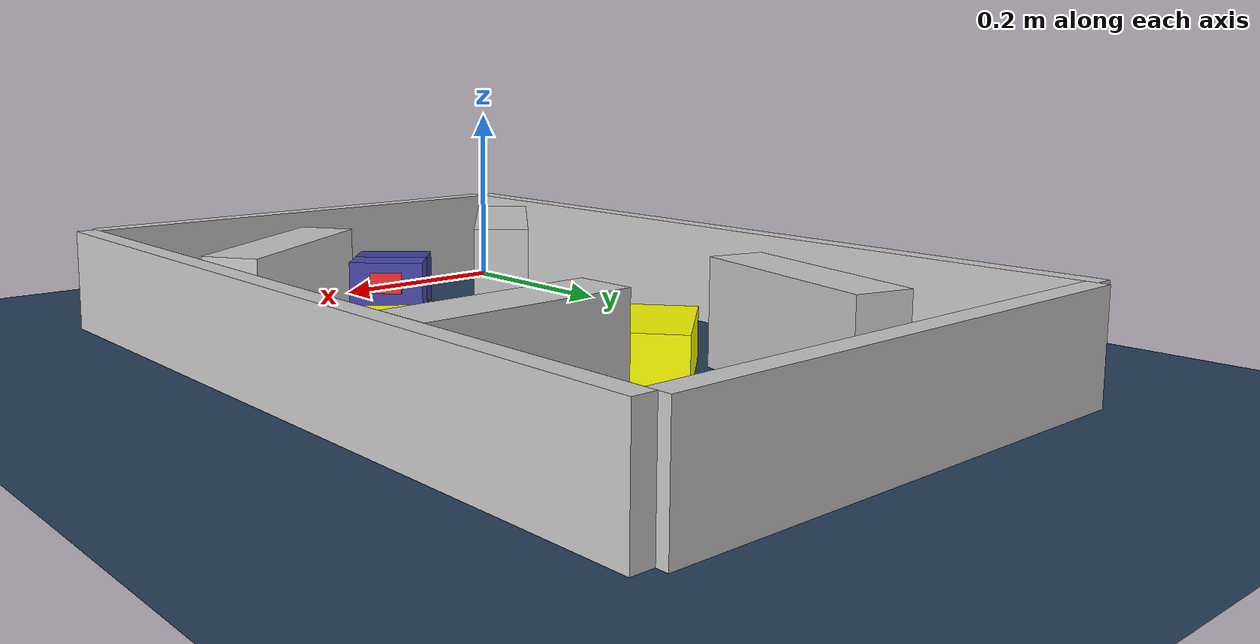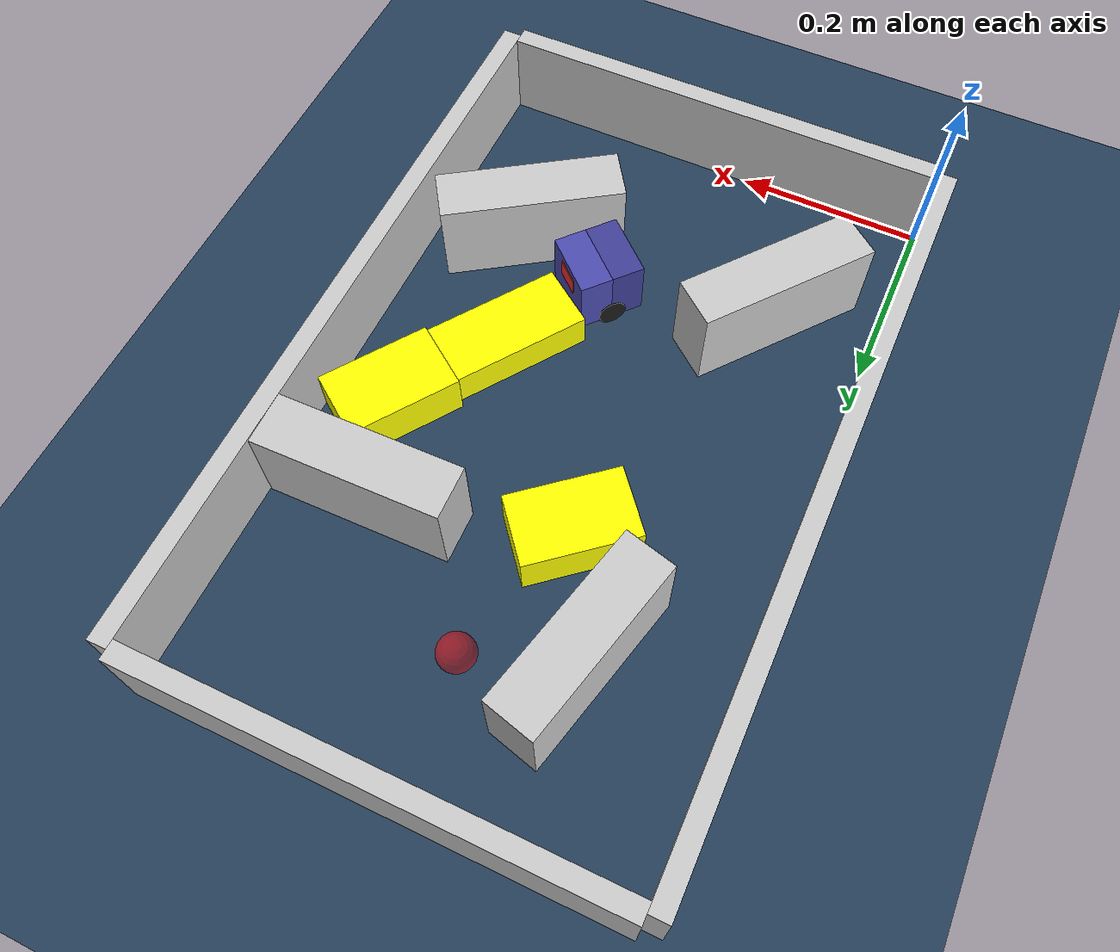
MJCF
<?xml version='1.0' encoding='utf-8'?>
<mujoco model="real_buildable">
  <compiler angle="degree" />
  <option timestep="0.002" integrator="implicitfast" iterations="100" cone="elliptic" />
  <default>
    <geom density="1" />
  </default>
  <asset>
    <texture builtin="gradient" height="3072" rgb1="0.3 0.5 0.7" rgb2="0 0 0" type="skybox" width="512" />
    <texture builtin="checker" height="300" mark="edge" markrgb="0.8 0.8 0.8" name="groundplane" rgb1="0.2 0.3 0.4" rgb2="0.1 0.2 0.3" type="2d" width="300" />
    <material name="groundplane" reflectance="0.2" texrepeat="5 5" texture="groundplane" texuniform="true" />
  </asset>
  <worldbody>
    <light dir="0 0 -1" directional="true" pos="0 0 1.5" />
    <geom name="floor" type="plane" condim="4" friction="0.5 0.005 0.001" material="groundplane" size="0 0 0.05" />
    <body name="walls">
      <geom name="wall_boundary_left" type="box" condim="4" friction="1.0 0.005 0.0001" rgba="0.8 0.8 0.8 1" pos="-0.010000 0.387500 0.050000" euler="0 0 0.000000" size="0.010000 0.397500 0.050000" />
      <geom name="wall_boundary_right" type="box" condim="4" friction="1.0 0.005 0.0001" rgba="0.8 0.8 0.8 1" pos="0.500000 0.387500 0.050000" euler="0 0 0.000000" size="0.010000 0.397500 0.050000" />
      <geom name="wall_boundary_bottom" type="box" condim="4" friction="1.0 0.005 0.0001" rgba="0.8 0.8 0.8 1" pos="0.245000 -0.010000 0.050000" euler="0 0 0.000000" size="0.245000 0.010000 0.050000" />
      <geom name="wall_boundary_top" type="box" condim="4" friction="1.0 0.005 0.0001" rgba="0.8 0.8 0.8 1" pos="0.245000 0.785000 0.050000" euler="0 0 0.000000" size="0.245000 0.010000 0.050000" />
      <geom name="wall_inner_1" type="box" condim="4" friction="1.0 0.005 0.0001" rgba="0.8 0.8 0.8 1" pos="0.112821 0.177057 0.050000" euler="0 0 51.144799" size="0.097500 0.027500 0.050000" />
      <geom name="wall_inner_2" type="box" condim="4" friction="1.0 0.005 0.0001" rgba="0.8 0.8 0.8 1" pos="0.385439 0.183719 0.050000" euler="0 0 33.390875" size="0.097500 0.027500 0.050000" />
      <geom name="wall_inner_3" type="box" condim="4" friction="1.0 0.005 0.0001" rgba="0.8 0.8 0.8 1" pos="0.392000 0.538000 0.050000" euler="0 0 1.000000" size="0.097500 0.027500 0.050000" />
      <geom name="wall_inner_4" type="box" condim="4" friction="1.0 0.005 0.0001" rgba="0.8 0.8 0.8 1" pos="0.135000 0.605000 0.050000" euler="0 0 75.800000" size="0.097500 0.027500 0.050000" />
    </body>
    <body name="car" pos="0.28828692586165167 0.22356565448337726 0.01" quat="0.91378121474334473 0 0 0.4062067104100785">
      <freejoint name="car_freejoint" />
      <inertial pos="0 0 0.0375" mass="0.35" diaginertia="0.000266 0.000266 0.000286" />
      <geom name="front_chassis_collision" type="box" pos="0.0175 0 0.0375" size="0.0175 0.035 0.0325" rgba="0.3 0.3 0.7 1" />
      <geom name="rear_chassis_collision" type="box" pos="-0.0175 0 0.0375" size="0.0175 0.035 0.0325" rgba="0.25 0.25 0.6 1" />
      <geom name="front_marker" type="box" pos="0.034 0 0.0505" size="0.002 0.015 0.01" rgba="1 0.2 0.2 1" contype="0" conaffinity="0" />
      <body name="rear_support_body" pos="-0.03 0 0.0025">
        <joint name="rear_caster_joint" type="ball" damping="0.0001" />
        <inertial pos="0 0 0" mass="0.025" diaginertia="0.000001 0.000001 0.000001" />
        <geom name="rear_support" type="sphere" pos="0 0 0" size="0.0025" friction="0 0 0" rgba="0.7 0.1 0.1 1" />
      </body>
      <body name="front_support_body" pos="0.03 0 0.0025">
        <joint name="front_caster_joint" type="ball" damping="0.0001" />
        <inertial pos="0 0 0" mass="0.025" diaginertia="0.000001 0.000001 0.000001" />
        <geom name="front_support" type="sphere" pos="0 0 0" size="0.0025" friction="0 0 0" rgba="0.1 0.7 0.1 1" />
      </body>
      <body name="left_wheel" pos="0 0.0375 0.015">
        <inertial pos="0 0 0" mass="0.05" diaginertia="0.000003 0.000006 0.000003" />
        <joint name="left_wheel_joint" type="hinge" axis="0 1 0" damping="0.01" armature="0.0001" />
        <geom name="left_wheel_collision" type="cylinder" size="0.015 0.0005" euler="90 0 0" rgba="0.1 0.1 0.1 1" />
      </body>
      <body name="right_wheel" pos="0 -0.0375 0.015">
        <inertial pos="0 0 0" mass="0.05" diaginertia="0.000003 0.000006 0.000003" />
        <joint name="right_wheel_joint" type="hinge" axis="0 1 0" damping="0.01" armature="0.0001" />
        <geom name="right_wheel_collision" type="cylinder" size="0.015 0.0005" euler="90 0 0" rgba="0.1 0.1 0.1 1" />
      </body>
    </body>
    <body name="obstacle_0_movable">
      <geom name="obstacle_0_movable" condim="4" pos="0.35084087629057509 0.31875154118083654 0.02" friction="1 0.005 0.0001" rgba="1 1 0 1" size="0.035000 0.075000 0.020000" type="box" mass="0.1" quat="0.30409977093558799 0 0 0.95264018880001222" />
      <joint type="free" />
    </body>
    <body name="obstacle_1_movable">
      <geom name="obstacle_1_movable" condim="4" pos="0.19599999999999992 0.48999999999999932 0.025000000000000001" friction="1 0.005 0.0001" rgba="1 1 0 1" size="0.037500 0.060000 0.025000" type="box" mass="0.1" quat="0.90556879901113962 0 0 -0.42419942274539019" />
      <joint type="free" />
    </body>
    <body name="obstacle_2_movable">
      <geom name="obstacle_2_movable" condim="4" pos="0.42484873092468145 0.43171177515197096 0.025000000000000001" friction="1 0.005 0.0001" rgba="1 1 0 1" size="0.037500 0.060000 0.025000" type="box" mass="0.1" quat="0.30337826771971732 0 0 0.95287020452702975" />
      <joint type="free" />
    </body>
    <site name="goal" type="sphere" pos="0.245000 0.640000 0.0" size="0.02" rgba="1 0 0 0.5" />
  </worldbody>
  <actuator>
    <velocity name="left_wheel_drive" joint="left_wheel_joint" ctrlrange="-25 25" kv="0.75" forcerange="-0.5 0.5" />
    <velocity name="right_wheel_drive" joint="right_wheel_joint" ctrlrange="-25 25" kv="0.75" forcerange="-0.5 0.5" />
  </actuator>
</mujoco>
